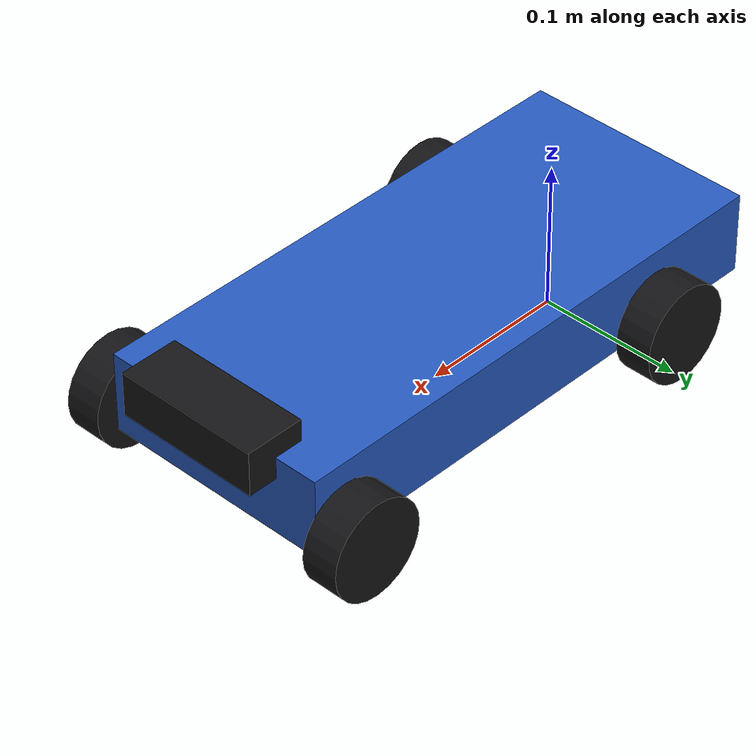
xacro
<?xml version="1.0"?>
<robot name="bfmc_vehicle" xmlns:xacro="http://www.ros.org/wiki/xacro">

  <xacro:arg name="name" default="ego"/>
  <xacro:arg name="colour" default="0.15 0.35 0.75 1"/>
  <xacro:arg name="gyro_bias" default="0.02"/>

  <xacro:property name="name" value="$(arg name)"/>

  <!-- Geometry. These are the numbers DriverConfig defaults to. -->
  <xacro:property name="wheelbase" value="0.26"/>
  <xacro:property name="track_width" value="0.19"/>
  <xacro:property name="wheel_radius" value="0.033"/>
  <xacro:property name="wheel_width" value="0.025"/>
  <xacro:property name="body_length" value="0.36"/>
  <xacro:property name="body_width" value="0.16"/>
  <xacro:property name="body_height" value="0.055"/>
  <xacro:property name="body_mass" value="1.6"/>
  <xacro:property name="wheel_mass" value="0.08"/>
  <xacro:property name="body_offset_x" value="0.10"/>

  <material name="body_colour">
    <color rgba="$(arg colour)"/>
  </material>
  <material name="tyre">
    <color rgba="0.08 0.08 0.09 1"/>
  </material>

  <xacro:macro name="box_inertia" params="mass x y z">
    <inertial>
      <mass value="${mass}"/>
      <inertia
        ixx="${mass * (y*y + z*z) / 12.0}" ixy="0.0" ixz="0.0"
        iyy="${mass * (x*x + z*z) / 12.0}" iyz="0.0"
        izz="${mass * (x*x + y*y) / 12.0}"/>
    </inertial>
  </xacro:macro>

  <xacro:macro name="wheel_inertia" params="mass radius width">
    <inertial>
      <mass value="${mass}"/>
      <inertia
        ixx="${mass * (3.0*radius*radius + width*width) / 12.0}" ixy="0.0" ixz="0.0"
        iyy="${mass * radius * radius / 2.0}" iyz="0.0"
        izz="${mass * (3.0*radius*radius + width*width) / 12.0}"/>
    </inertial>
  </xacro:macro>

  <xacro:macro name="wheel" params="prefix parent x y steerable:=false">
    <xacro:if value="${steerable}">
      <link name="${prefix}_steer_link">
        <inertial>
          <mass value="0.02"/>
          <inertia ixx="1e-5" ixy="0" ixz="0" iyy="1e-5" iyz="0" izz="1e-5"/>
        </inertial>
      </link>
      <joint name="${prefix}_steer_joint" type="revolute">
        <parent link="${parent}"/>
        <child link="${prefix}_steer_link"/>
        <origin xyz="${x} ${y} ${wheel_radius}" rpy="0 0 0"/>
        <axis xyz="0 0 1"/>
        <limit lower="-0.52" upper="0.52" effort="10.0" velocity="8.0"/>
      </joint>
    </xacro:if>

    <link name="${prefix}_wheel">
      <visual>
        <origin xyz="0 0 0" rpy="1.5707963 0 0"/>
        <geometry><cylinder radius="${wheel_radius}" length="${wheel_width}"/></geometry>
        <material name="tyre"/>
      </visual>
      <collision>
        <origin xyz="0 0 0" rpy="1.5707963 0 0"/>
        <geometry><cylinder radius="${wheel_radius}" length="${wheel_width}"/></geometry>
      </collision>
      <xacro:wheel_inertia mass="${wheel_mass}" radius="${wheel_radius}" width="${wheel_width}"/>
    </link>

    <joint name="${prefix}_wheel_joint" type="continuous">
      <xacro:if value="${steerable}">
        <parent link="${prefix}_steer_link"/>
        <origin xyz="0 0 0" rpy="0 0 0"/>
      </xacro:if>
      <xacro:unless value="${steerable}">
        <parent link="${parent}"/>
        <origin xyz="${x} ${y} ${wheel_radius}" rpy="0 0 0"/>
      </xacro:unless>
      <child link="${prefix}_wheel"/>
      <axis xyz="0 1 0"/>
    </joint>

    <gazebo reference="${prefix}_wheel">
      <mu1>1.1</mu1>
      <mu2>1.1</mu2>
      <material>Gazebo/Black</material>
    </gazebo>
  </xacro:macro>

  <!-- ==================================================== links ========= -->

  <link name="base_link">
    <visual>
      <origin xyz="${body_offset_x} 0 ${body_height/2 + wheel_radius - 0.01}" rpy="0 0 0"/>
      <geometry><box size="${body_length} ${body_width} ${body_height}"/></geometry>
      <material name="body_colour"/>
    </visual>
    <collision>
      <origin xyz="${body_offset_x} 0 ${body_height/2 + wheel_radius - 0.01}" rpy="0 0 0"/>
      <geometry><box size="${body_length} ${body_width} ${body_height}"/></geometry>
    </collision>
    <xacro:box_inertia mass="${body_mass}" x="${body_length}" y="${body_width}" z="${body_height}"/>
  </link>

  <!-- A visible nose, so which way the car is pointing is obvious in a
       screenshot without having to infer it from motion. -->
  <link name="nose">
    <visual>
      <geometry><box size="0.04 0.10 0.03"/></geometry>
      <material name="tyre"/>
    </visual>
  </link>
  <joint name="nose_joint" type="fixed">
    <parent link="base_link"/>
    <child link="nose"/>
    <origin xyz="${body_offset_x + body_length/2} 0 ${wheel_radius + body_height - 0.01}" rpy="0 0 0"/>
  </joint>

  <xacro:wheel prefix="rear_left"  parent="base_link" x="0"           y="${ track_width/2}"/>
  <xacro:wheel prefix="rear_right" parent="base_link" x="0"           y="${-track_width/2}"/>
  <xacro:wheel prefix="front_left"  parent="base_link" x="${wheelbase}" y="${ track_width/2}" steerable="true"/>
  <xacro:wheel prefix="front_right" parent="base_link" x="${wheelbase}" y="${-track_width/2}" steerable="true"/>

  <link name="imu_link">
    <inertial>
      <mass value="0.01"/>
      <inertia ixx="1e-6" ixy="0" ixz="0" iyy="1e-6" iyz="0" izz="1e-6"/>
    </inertial>
  </link>
  <joint name="imu_joint" type="fixed">
    <parent link="base_link"/>
    <child link="imu_link"/>
    <origin xyz="${body_offset_x} 0 ${wheel_radius + 0.02}" rpy="0 0 0"/>
  </joint>

  <!-- ================================================ gazebo =========== -->

  <gazebo reference="base_link">
    <material>Gazebo/Blue</material>
  </gazebo>

  <gazebo reference="imu_link">
    <sensor name="imu_sensor" type="imu">
      <always_on>1</always_on>
      <update_rate>100</update_rate>
      <topic>model/${name}/imu</topic>
      <gz_frame_id>${name}/imu_link</gz_frame_id>
      <imu>
        <angular_velocity>
          <z>
            <!-- The bias is the point. A pure white-noise gyro would let
                 dead reckoning hold heading almost indefinitely, and the
                 filter would have nothing to estimate. -->
            <noise type="gaussian">
              <mean>0.0</mean>
              <stddev>0.004</stddev>
              <bias_mean>$(arg gyro_bias)</bias_mean>
              <bias_stddev>0.002</bias_stddev>
            </noise>
          </z>
        </angular_velocity>
        <linear_acceleration>
          <x><noise type="gaussian"><mean>0.0</mean><stddev>0.05</stddev></noise></x>
          <y><noise type="gaussian"><mean>0.0</mean><stddev>0.05</stddev></noise></y>
          <z><noise type="gaussian"><mean>0.0</mean><stddev>0.05</stddev></noise></z>
        </linear_acceleration>
      </imu>
    </sensor>
  </gazebo>

  <gazebo>
    <plugin filename="gz-sim-ackermann-steering-system"
            name="gz::sim::systems::AckermannSteering">
      <left_joint>rear_left_wheel_joint</left_joint>
      <right_joint>rear_right_wheel_joint</right_joint>
      <left_steering_joint>front_left_steer_joint</left_steering_joint>
      <right_steering_joint>front_right_steer_joint</right_steering_joint>
      <kingpin_width>${track_width}</kingpin_width>
      <steering_limit>0.44</steering_limit>
      <wheel_base>${wheelbase}</wheel_base>
      <wheel_separation>${track_width}</wheel_separation>
      <wheel_radius>${wheel_radius}</wheel_radius>
      <min_velocity>-0.6</min_velocity>
      <max_velocity>0.6</max_velocity>
      <min_acceleration>-2.0</min_acceleration>
      <max_acceleration>2.0</max_acceleration>
      <topic>model/${name}/cmd_vel</topic>
    </plugin>

    <!-- Ground truth. Used only for scoring and for simulating sensors;
         see the node docstrings for where that boundary is enforced. -->
    <plugin filename="gz-sim-odometry-publisher-system"
            name="gz::sim::systems::OdometryPublisher">
      <odom_frame>map</odom_frame>
      <robot_base_frame>${name}/base_link</robot_base_frame>
      <odom_topic>model/${name}/odometry</odom_topic>
      <dimensions>2</dimensions>
      <odom_publish_frequency>50</odom_publish_frequency>
    </plugin>

    <plugin filename="gz-sim-joint-state-publisher-system"
            name="gz::sim::systems::JointStatePublisher">
      <topic>model/${name}/joint_state</topic>
    </plugin>
  </gazebo>

</robot>
